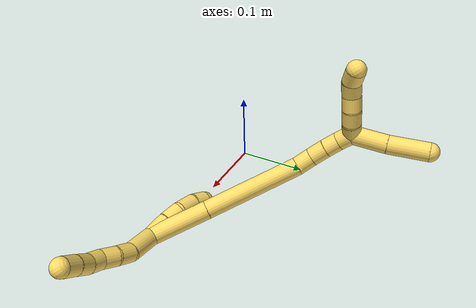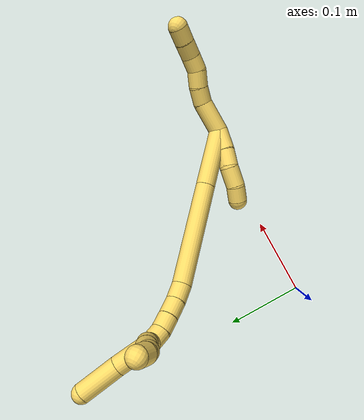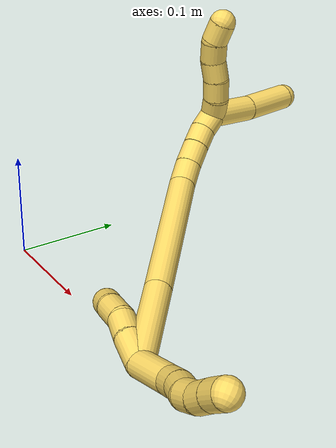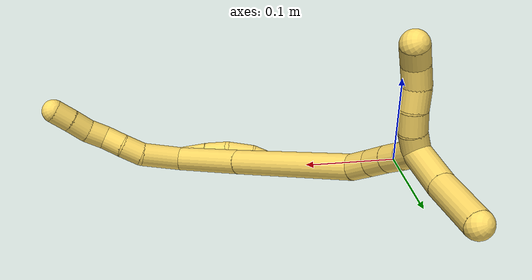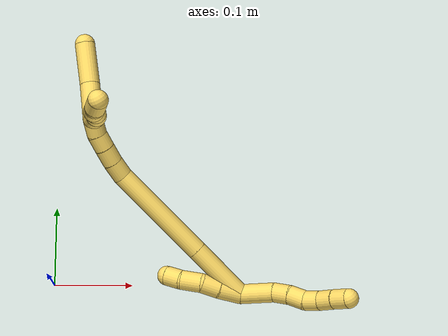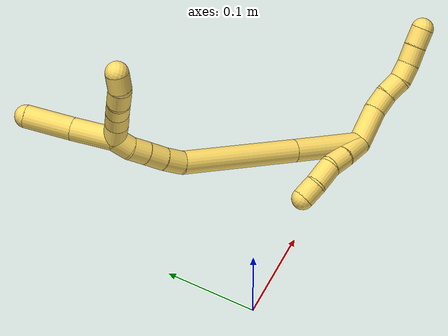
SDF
<sdf version="1.7">
 <world name="default">
  <model name="5">
   <static>0</static>
   <link name="5">
    <collision name="collision-cylinder-e_1_2_8">
     <pose>0.011828 -0.017289 -0.00588 1.89864 0.574762 0.782841</pose>
     <geometry><cylinder><radius>0.0125</radius><length>0.043515</length></cylinder></geometry>
     <surface>
      <friction><ode><mu>1.16</mu><mu2>1.16</mu2><slip1>0</slip1><slip2>0</slip2></ode></friction>
      <contact><ode><kp>1e+06</kp><kd>1</kd><max_vel>0</max_vel><min_depth>0.001</min_depth></ode></contact>
     </surface>
    </collision>
    <visual name="visual-cylinder-e_1_2_8">
     <pose>0.011828 -0.017289 -0.00588 1.89864 0.574762 0.782841</pose>
     <geometry><cylinder><radius>0.0125</radius><length>0.043515</length></cylinder></geometry>
     <material><ambient>1 0.858824 0.4 1</ambient></material>
    </visual>
    <collision name="collision-cylinder-e_2_8_9">
     <pose>0.026472 -0.044885 -0.015012 1.87635 0.254874 0.346049</pose>
     <geometry><cylinder><radius>0.0125</radius><length>0.022336</length></cylinder></geometry>
     <surface>
      <friction><ode><mu>1.16</mu><mu2>1.16</mu2><slip1>0</slip1><slip2>0</slip2></ode></friction>
      <contact><ode><kp>1e+06</kp><kd>1</kd><max_vel>0</max_vel><min_depth>0.001</min_depth></ode></contact>
     </surface>
    </collision>
    <visual name="visual-cylinder-e_2_8_9">
     <pose>0.026472 -0.044885 -0.015012 1.87635 0.254874 0.346049</pose>
     <geometry><cylinder><radius>0.0125</radius><length>0.022336</length></cylinder></geometry>
     <material><ambient>1 0.858824 0.4 1</ambient></material>
    </visual>
    <collision name="collision-cylinder-e_3_9_10">
     <pose>0.031049 -0.064879 -0.023002 2.02571 0.161848 0.258456</pose>
     <geometry><cylinder><radius>0.0125</radius><length>0.021856</length></cylinder></geometry>
     <surface>
      <friction><ode><mu>1.16</mu><mu2>1.16</mu2><slip1>0</slip1><slip2>0</slip2></ode></friction>
      <contact><ode><kp>1e+06</kp><kd>1</kd><max_vel>0</max_vel><min_depth>0.001</min_depth></ode></contact>
     </surface>
    </collision>
    <visual name="visual-cylinder-e_3_9_10">
     <pose>0.031049 -0.064879 -0.023002 2.02571 0.161848 0.258456</pose>
     <geometry><cylinder><radius>0.0125</radius><length>0.021856</length></cylinder></geometry>
     <material><ambient>1 0.858824 0.4 1</ambient></material>
    </visual>
    <collision name="collision-cylinder-e_4_10_11">
     <pose>0.036319 -0.083805 -0.029462 1.75505 0.357369 0.4281</pose>
     <geometry><cylinder><radius>0.0125</radius><length>0.020061</length></cylinder></geometry>
     <surface>
      <friction><ode><mu>1.16</mu><mu2>1.16</mu2><slip1>0</slip1><slip2>0</slip2></ode></friction>
      <contact><ode><kp>1e+06</kp><kd>1</kd><max_vel>0</max_vel><min_depth>0.001</min_depth></ode></contact>
     </surface>
    </collision>
    <visual name="visual-cylinder-e_4_10_11">
     <pose>0.036319 -0.083805 -0.029462 1.75505 0.357369 0.4281</pose>
     <geometry><cylinder><radius>0.0125</radius><length>0.020061</length></cylinder></geometry>
     <material><ambient>1 0.858824 0.4 1</ambient></material>
    </visual>
    <collision name="collision-cylinder-e_5_11_12">
     <pose>0.042295 -0.103363 -0.03102 1.55496 0.234645 0.230991</pose>
     <geometry><cylinder><radius>0.0125</radius><length>0.021223</length></cylinder></geometry>
     <surface>
      <friction><ode><mu>1.16</mu><mu2>1.16</mu2><slip1>0</slip1><slip2>0</slip2></ode></friction>
      <contact><ode><kp>1e+06</kp><kd>1</kd><max_vel>0</max_vel><min_depth>0.001</min_depth></ode></contact>
     </surface>
    </collision>
    <visual name="visual-cylinder-e_5_11_12">
     <pose>0.042295 -0.103363 -0.03102 1.55496 0.234645 0.230991</pose>
     <geometry><cylinder><radius>0.0125</radius><length>0.021223</length></cylinder></geometry>
     <material><ambient>1 0.858824 0.4 1</ambient></material>
    </visual>
    <collision name="collision-cylinder-e_6_12_6">
     <pose>0.047386 -0.123848 -0.031181 1.60272 0.252493 0.260594</pose>
     <geometry><cylinder><radius>0.0125</radius><length>0.021009</length></cylinder></geometry>
     <surface>
      <friction><ode><mu>1.16</mu><mu2>1.16</mu2><slip1>0</slip1><slip2>0</slip2></ode></friction>
      <contact><ode><kp>1e+06</kp><kd>1</kd><max_vel>0</max_vel><min_depth>0.001</min_depth></ode></contact>
     </surface>
    </collision>
    <visual name="visual-cylinder-e_6_12_6">
     <pose>0.047386 -0.123848 -0.031181 1.60272 0.252493 0.260594</pose>
     <geometry><cylinder><radius>0.0125</radius><length>0.021009</length></cylinder></geometry>
     <material><ambient>1 0.858824 0.4 1</ambient></material>
    </visual>
    <collision name="collision-cylinder-e_1_2_13">
     <pose>-0.00827 0.007241 0.00979 -0.636848 -0.596628 0.202033</pose>
     <geometry><cylinder><radius>0.0125</radius><length>0.029439</length></cylinder></geometry>
     <surface>
      <friction><ode><mu>1.16</mu><mu2>1.16</mu2><slip1>0</slip1><slip2>0</slip2></ode></friction>
      <contact><ode><kp>1e+06</kp><kd>1</kd><max_vel>0</max_vel><min_depth>0.001</min_depth></ode></contact>
     </surface>
    </collision>
    <visual name="visual-cylinder-e_1_2_13">
     <pose>-0.00827 0.007241 0.00979 -0.636848 -0.596628 0.202033</pose>
     <geometry><cylinder><radius>0.0125</radius><length>0.029439</length></cylinder></geometry>
     <material><ambient>1 0.858824 0.4 1</ambient></material>
    </visual>
    <collision name="collision-cylinder-e_2_13_14">
     <pose>-0.021904 0.020702 0.027573 -0.661309 -0.487013 0.170143</pose>
     <geometry><cylinder><radius>0.0125</radius><length>0.022923</length></cylinder></geometry>
     <surface>
      <friction><ode><mu>1.16</mu><mu2>1.16</mu2><slip1>0</slip1><slip2>0</slip2></ode></friction>
      <contact><ode><kp>1e+06</kp><kd>1</kd><max_vel>0</max_vel><min_depth>0.001</min_depth></ode></contact>
     </surface>
    </collision>
    <visual name="visual-cylinder-e_2_13_14">
     <pose>-0.021904 0.020702 0.027573 -0.661309 -0.487013 0.170143</pose>
     <geometry><cylinder><radius>0.0125</radius><length>0.022923</length></cylinder></geometry>
     <material><ambient>1 0.858824 0.4 1</ambient></material>
    </visual>
    <collision name="collision-cylinder-e_3_14_15">
     <pose>-0.033198 0.037255 0.04167 -1.03722 -0.458944 0.26506</pose>
     <geometry><cylinder><radius>0.0125</radius><length>0.02677</length></cylinder></geometry>
     <surface>
      <friction><ode><mu>1.16</mu><mu2>1.16</mu2><slip1>0</slip1><slip2>0</slip2></ode></friction>
      <contact><ode><kp>1e+06</kp><kd>1</kd><max_vel>0</max_vel><min_depth>0.001</min_depth></ode></contact>
     </surface>
    </collision>
    <visual name="visual-cylinder-e_3_14_15">
     <pose>-0.033198 0.037255 0.04167 -1.03722 -0.458944 0.26506</pose>
     <geometry><cylinder><radius>0.0125</radius><length>0.02677</length></cylinder></geometry>
     <material><ambient>1 0.858824 0.4 1</ambient></material>
    </visual>
    <collision name="collision-cylinder-e_4_15_5">
     <pose>-0.041487 0.056788 0.052091 -1.13206 -0.228138 0.145331</pose>
     <geometry><cylinder><radius>0.0125</radius><length>0.020868</length></cylinder></geometry>
     <surface>
      <friction><ode><mu>1.16</mu><mu2>1.16</mu2><slip1>0</slip1><slip2>0</slip2></ode></friction>
      <contact><ode><kp>1e+06</kp><kd>1</kd><max_vel>0</max_vel><min_depth>0.001</min_depth></ode></contact>
     </surface>
    </collision>
    <visual name="visual-cylinder-e_4_15_5">
     <pose>-0.041487 0.056788 0.052091 -1.13206 -0.228138 0.145331</pose>
     <geometry><cylinder><radius>0.0125</radius><length>0.020868</length></cylinder></geometry>
     <material><ambient>1 0.858824 0.4 1</ambient></material>
    </visual>
    <collision name="collision-cylinder-e_1_2_16">
     <pose>-0.004744 0.014675 0.037193 -0.37582 -0.11809 0.02248</pose>
     <geometry><cylinder><radius>0.0125</radius><length>0.080528</length></cylinder></geometry>
     <surface>
      <friction><ode><mu>1.16</mu><mu2>1.16</mu2><slip1>0</slip1><slip2>0</slip2></ode></friction>
      <contact><ode><kp>1e+06</kp><kd>1</kd><max_vel>0</max_vel><min_depth>0.001</min_depth></ode></contact>
     </surface>
    </collision>
    <visual name="visual-cylinder-e_1_2_16">
     <pose>-0.004744 0.014675 0.037193 -0.37582 -0.11809 0.02248</pose>
     <geometry><cylinder><radius>0.0125</radius><length>0.080528</length></cylinder></geometry>
     <material><ambient>1 0.858824 0.4 1</ambient></material>
    </visual>
    <collision name="collision-cylinder-e_2_16_17">
     <pose>-0.017806 0.053258 0.136537 -0.367211 -0.124278 0.023107</pose>
     <geometry><cylinder><radius>0.0125</radius><length>0.134217</length></cylinder></geometry>
     <surface>
      <friction><ode><mu>1.16</mu><mu2>1.16</mu2><slip1>0</slip1><slip2>0</slip2></ode></friction>
      <contact><ode><kp>1e+06</kp><kd>1</kd><max_vel>0</max_vel><min_depth>0.001</min_depth></ode></contact>
     </surface>
    </collision>
    <visual name="visual-cylinder-e_2_16_17">
     <pose>-0.017806 0.053258 0.136537 -0.367211 -0.124278 0.023107</pose>
     <geometry><cylinder><radius>0.0125</radius><length>0.134217</length></cylinder></geometry>
     <material><ambient>1 0.858824 0.4 1</ambient></material>
    </visual>
    <collision name="collision-cylinder-e_3_17_18">
     <pose>-0.027472 0.077777 0.210175 -0.053228 -0.116582 0.003107</pose>
     <geometry><cylinder><radius>0.0125</radius><length>0.023162</length></cylinder></geometry>
     <surface>
      <friction><ode><mu>1.16</mu><mu2>1.16</mu2><slip1>0</slip1><slip2>0</slip2></ode></friction>
      <contact><ode><kp>1e+06</kp><kd>1</kd><max_vel>0</max_vel><min_depth>0.001</min_depth></ode></contact>
     </surface>
    </collision>
    <visual name="visual-cylinder-e_3_17_18">
     <pose>-0.027472 0.077777 0.210175 -0.053228 -0.116582 0.003107</pose>
     <geometry><cylinder><radius>0.0125</radius><length>0.023162</length></cylinder></geometry>
     <material><ambient>1 0.858824 0.4 1</ambient></material>
    </visual>
    <collision name="collision-cylinder-e_4_18_19">
     <pose>-0.029362 0.078268 0.232653 0.011031 -0.049362 -0.000272</pose>
     <geometry><cylinder><radius>0.0125</radius><length>0.022013</length></cylinder></geometry>
     <surface>
      <friction><ode><mu>1.16</mu><mu2>1.16</mu2><slip1>0</slip1><slip2>0</slip2></ode></friction>
      <contact><ode><kp>1e+06</kp><kd>1</kd><max_vel>0</max_vel><min_depth>0.001</min_depth></ode></contact>
     </surface>
    </collision>
    <visual name="visual-cylinder-e_4_18_19">
     <pose>-0.029362 0.078268 0.232653 0.011031 -0.049362 -0.000272</pose>
     <geometry><cylinder><radius>0.0125</radius><length>0.022013</length></cylinder></geometry>
     <material><ambient>1 0.858824 0.4 1</ambient></material>
    </visual>
    <collision name="collision-cylinder-e_5_19_20">
     <pose>-0.030099 0.078291 0.253668 -0.01445 -0.019342 0.00014</pose>
     <geometry><cylinder><radius>0.0125</radius><length>0.02005</length></cylinder></geometry>
     <surface>
      <friction><ode><mu>1.16</mu><mu2>1.16</mu2><slip1>0</slip1><slip2>0</slip2></ode></friction>
      <contact><ode><kp>1e+06</kp><kd>1</kd><max_vel>0</max_vel><min_depth>0.001</min_depth></ode></contact>
     </surface>
    </collision>
    <visual name="visual-cylinder-e_5_19_20">
     <pose>-0.030099 0.078291 0.253668 -0.01445 -0.019342 0.00014</pose>
     <geometry><cylinder><radius>0.0125</radius><length>0.02005</length></cylinder></geometry>
     <material><ambient>1 0.858824 0.4 1</ambient></material>
    </visual>
    <collision name="collision-cylinder-e_6_20_1">
     <pose>-0.028961 0.076789 0.273478 0.166676 0.1334 0.011159</pose>
     <geometry><cylinder><radius>0.0125</radius><length>0.02003</length></cylinder></geometry>
     <surface>
      <friction><ode><mu>1.16</mu><mu2>1.16</mu2><slip1>0</slip1><slip2>0</slip2></ode></friction>
      <contact><ode><kp>1e+06</kp><kd>1</kd><max_vel>0</max_vel><min_depth>0.001</min_depth></ode></contact>
     </surface>
    </collision>
    <visual name="visual-cylinder-e_6_20_1">
     <pose>-0.028961 0.076789 0.273478 0.166676 0.1334 0.011159</pose>
     <geometry><cylinder><radius>0.0125</radius><length>0.02003</length></cylinder></geometry>
     <material><ambient>1 0.858824 0.4 1</ambient></material>
    </visual>
    <collision name="collision-cylinder-e_1_1_21">
     <pose>-0.030116 0.06624 0.287082 1.16593 -0.251396 -0.166269</pose>
     <geometry><cylinder><radius>0.0125</radius><length>0.02</length></cylinder></geometry>
     <surface>
      <friction><ode><mu>1.16</mu><mu2>1.16</mu2><slip1>0</slip1><slip2>0</slip2></ode></friction>
      <contact><ode><kp>1e+06</kp><kd>1</kd><max_vel>0</max_vel><min_depth>0.001</min_depth></ode></contact>
     </surface>
    </collision>
    <visual name="visual-cylinder-e_1_1_21">
     <pose>-0.030116 0.06624 0.287082 1.16593 -0.251396 -0.166269</pose>
     <geometry><cylinder><radius>0.0125</radius><length>0.02</length></cylinder></geometry>
     <material><ambient>1 0.858824 0.4 1</ambient></material>
    </visual>
    <collision name="collision-cylinder-e_2_21_22">
     <pose>-0.036633 0.049519 0.295656 1.02399 -0.414672 -0.235344</pose>
     <geometry><cylinder><radius>0.0125</radius><length>0.02</length></cylinder></geometry>
     <surface>
      <friction><ode><mu>1.16</mu><mu2>1.16</mu2><slip1>0</slip1><slip2>0</slip2></ode></friction>
      <contact><ode><kp>1e+06</kp><kd>1</kd><max_vel>0</max_vel><min_depth>0.001</min_depth></ode></contact>
     </surface>
    </collision>
    <visual name="visual-cylinder-e_2_21_22">
     <pose>-0.036633 0.049519 0.295656 1.02399 -0.414672 -0.235344</pose>
     <geometry><cylinder><radius>0.0125</radius><length>0.02</length></cylinder></geometry>
     <material><ambient>1 0.858824 0.4 1</ambient></material>
    </visual>
    <collision name="collision-cylinder-e_3_22_23">
     <pose>-0.046173 0.034721 0.304986 0.991027 -0.583716 -0.321958</pose>
     <geometry><cylinder><radius>0.0125</radius><length>0.02</length></cylinder></geometry>
     <surface>
      <friction><ode><mu>1.16</mu><mu2>1.16</mu2><slip1>0</slip1><slip2>0</slip2></ode></friction>
      <contact><ode><kp>1e+06</kp><kd>1</kd><max_vel>0</max_vel><min_depth>0.001</min_depth></ode></contact>
     </surface>
    </collision>
    <visual name="visual-cylinder-e_3_22_23">
     <pose>-0.046173 0.034721 0.304986 0.991027 -0.583716 -0.321958</pose>
     <geometry><cylinder><radius>0.0125</radius><length>0.02</length></cylinder></geometry>
     <material><ambient>1 0.858824 0.4 1</ambient></material>
    </visual>
    <collision name="collision-cylinder-e_4_23_24">
     <pose>-0.055088 0.019412 0.313923 1.08803 -0.347327 -0.211446</pose>
     <geometry><cylinder><radius>0.0125</radius><length>0.02</length></cylinder></geometry>
     <surface>
      <friction><ode><mu>1.16</mu><mu2>1.16</mu2><slip1>0</slip1><slip2>0</slip2></ode></friction>
      <contact><ode><kp>1e+06</kp><kd>1</kd><max_vel>0</max_vel><min_depth>0.001</min_depth></ode></contact>
     </surface>
    </collision>
    <visual name="visual-cylinder-e_4_23_24">
     <pose>-0.055088 0.019412 0.313923 1.08803 -0.347327 -0.211446</pose>
     <geometry><cylinder><radius>0.0125</radius><length>0.02</length></cylinder></geometry>
     <material><ambient>1 0.858824 0.4 1</ambient></material>
    </visual>
    <collision name="collision-cylinder-e_5_24_4">
     <pose>-0.058925 0.003083 0.324272 0.928563 -0.04333 -0.021702</pose>
     <geometry><cylinder><radius>0.0125</radius><length>0.02</length></cylinder></geometry>
     <surface>
      <friction><ode><mu>1.16</mu><mu2>1.16</mu2><slip1>0</slip1><slip2>0</slip2></ode></friction>
      <contact><ode><kp>1e+06</kp><kd>1</kd><max_vel>0</max_vel><min_depth>0.001</min_depth></ode></contact>
     </surface>
    </collision>
    <visual name="visual-cylinder-e_5_24_4">
     <pose>-0.058925 0.003083 0.324272 0.928563 -0.04333 -0.021702</pose>
     <geometry><cylinder><radius>0.0125</radius><length>0.02</length></cylinder></geometry>
     <material><ambient>1 0.858824 0.4 1</ambient></material>
    </visual>
    <collision name="collision-cylinder-e_1_1_25">
     <pose>-0.012929 0.082474 0.300059 -0.411659 0.676128 -0.146539</pose>
     <geometry><cylinder><radius>0.0125</radius><length>0.046981</length></cylinder></geometry>
     <surface>
      <friction><ode><mu>1.16</mu><mu2>1.16</mu2><slip1>0</slip1><slip2>0</slip2></ode></friction>
      <contact><ode><kp>1e+06</kp><kd>1</kd><max_vel>0</max_vel><min_depth>0.001</min_depth></ode></contact>
     </surface>
    </collision>
    <visual name="visual-cylinder-e_1_1_25">
     <pose>-0.012929 0.082474 0.300059 -0.411659 0.676128 -0.146539</pose>
     <geometry><cylinder><radius>0.0125</radius><length>0.046981</length></cylinder></geometry>
     <material><ambient>1 0.858824 0.4 1</ambient></material>
    </visual>
    <collision name="collision-cylinder-e_2_25_3">
     <pose>0.01695 0.096949 0.337378 -0.334899 0.609639 -0.106263</pose>
     <geometry><cylinder><radius>0.0125</radius><length>0.053019</length></cylinder></geometry>
     <surface>
      <friction><ode><mu>1.16</mu><mu2>1.16</mu2><slip1>0</slip1><slip2>0</slip2></ode></friction>
      <contact><ode><kp>1e+06</kp><kd>1</kd><max_vel>0</max_vel><min_depth>0.001</min_depth></ode></contact>
     </surface>
    </collision>
    <visual name="visual-cylinder-e_2_25_3">
     <pose>0.01695 0.096949 0.337378 -0.334899 0.609639 -0.106263</pose>
     <geometry><cylinder><radius>0.0125</radius><length>0.053019</length></cylinder></geometry>
     <material><ambient>1 0.858824 0.4 1</ambient></material>
    </visual>
    <collision name="collision-sphere-3">
     <pose>0.032128 0.104092 0.357904 0 -0 0</pose>
     <geometry><sphere><radius>0.0125</radius></sphere></geometry>
     <surface>
      <friction><ode><mu>1.16</mu><mu2>1.16</mu2><slip1>0</slip1><slip2>0</slip2></ode></friction>
      <contact><ode><kp>1e+06</kp><kd>1</kd><max_vel>0</max_vel><min_depth>0.001</min_depth></ode></contact>
     </surface>
    </collision>
    <visual name="visual-sphere-3">
     <pose>0.032128 0.104092 0.357904 0 -0 0</pose>
     <geometry><sphere><radius>0.0125</radius></sphere></geometry>
     <material><ambient>1 0.858824 0.4 1</ambient></material>
    </visual>
    <collision name="collision-sphere-25">
     <pose>0.001771 0.089805 0.316851 0 -0 0</pose>
     <geometry><sphere><radius>0.0125</radius></sphere></geometry>
     <surface>
      <friction><ode><mu>1.16</mu><mu2>1.16</mu2><slip1>0</slip1><slip2>0</slip2></ode></friction>
      <contact><ode><kp>1e+06</kp><kd>1</kd><max_vel>0</max_vel><min_depth>0.001</min_depth></ode></contact>
     </surface>
    </collision>
    <visual name="visual-sphere-25">
     <pose>0.001771 0.089805 0.316851 0 -0 0</pose>
     <geometry><sphere><radius>0.0125</radius></sphere></geometry>
     <material><ambient>1 0.858824 0.4 1</ambient></material>
    </visual>
    <collision name="collision-sphere-4">
     <pose>-0.059358 -0.004917 0.330256 0 -0 0</pose>
     <geometry><sphere><radius>0.0125</radius></sphere></geometry>
     <surface>
      <friction><ode><mu>1.16</mu><mu2>1.16</mu2><slip1>0</slip1><slip2>0</slip2></ode></friction>
      <contact><ode><kp>1e+06</kp><kd>1</kd><max_vel>0</max_vel><min_depth>0.001</min_depth></ode></contact>
     </surface>
    </collision>
    <visual name="visual-sphere-4">
     <pose>-0.059358 -0.004917 0.330256 0 -0 0</pose>
     <geometry><sphere><radius>0.0125</radius></sphere></geometry>
     <material><ambient>1 0.858824 0.4 1</ambient></material>
    </visual>
    <collision name="collision-sphere-24">
     <pose>-0.058492 0.011083 0.318288 0 -0 0</pose>
     <geometry><sphere><radius>0.0125</radius></sphere></geometry>
     <surface>
      <friction><ode><mu>1.16</mu><mu2>1.16</mu2><slip1>0</slip1><slip2>0</slip2></ode></friction>
      <contact><ode><kp>1e+06</kp><kd>1</kd><max_vel>0</max_vel><min_depth>0.001</min_depth></ode></contact>
     </surface>
    </collision>
    <visual name="visual-sphere-24">
     <pose>-0.058492 0.011083 0.318288 0 -0 0</pose>
     <geometry><sphere><radius>0.0125</radius></sphere></geometry>
     <material><ambient>1 0.858824 0.4 1</ambient></material>
    </visual>
    <collision name="collision-sphere-23">
     <pose>-0.051684 0.02774 0.309558 0 -0 0</pose>
     <geometry><sphere><radius>0.0125</radius></sphere></geometry>
     <surface>
      <friction><ode><mu>1.16</mu><mu2>1.16</mu2><slip1>0</slip1><slip2>0</slip2></ode></friction>
      <contact><ode><kp>1e+06</kp><kd>1</kd><max_vel>0</max_vel><min_depth>0.001</min_depth></ode></contact>
     </surface>
    </collision>
    <visual name="visual-sphere-23">
     <pose>-0.051684 0.02774 0.309558 0 -0 0</pose>
     <geometry><sphere><radius>0.0125</radius></sphere></geometry>
     <material><ambient>1 0.858824 0.4 1</ambient></material>
    </visual>
    <collision name="collision-sphere-22">
     <pose>-0.040662 0.041701 0.300415 0 -0 0</pose>
     <geometry><sphere><radius>0.0125</radius></sphere></geometry>
     <surface>
      <friction><ode><mu>1.16</mu><mu2>1.16</mu2><slip1>0</slip1><slip2>0</slip2></ode></friction>
      <contact><ode><kp>1e+06</kp><kd>1</kd><max_vel>0</max_vel><min_depth>0.001</min_depth></ode></contact>
     </surface>
    </collision>
    <visual name="visual-sphere-22">
     <pose>-0.040662 0.041701 0.300415 0 -0 0</pose>
     <geometry><sphere><radius>0.0125</radius></sphere></geometry>
     <material><ambient>1 0.858824 0.4 1</ambient></material>
    </visual>
    <collision name="collision-sphere-21">
     <pose>-0.032604 0.057337 0.290897 0 -0 0</pose>
     <geometry><sphere><radius>0.0125</radius></sphere></geometry>
     <surface>
      <friction><ode><mu>1.16</mu><mu2>1.16</mu2><slip1>0</slip1><slip2>0</slip2></ode></friction>
      <contact><ode><kp>1e+06</kp><kd>1</kd><max_vel>0</max_vel><min_depth>0.001</min_depth></ode></contact>
     </surface>
    </collision>
    <visual name="visual-sphere-21">
     <pose>-0.032604 0.057337 0.290897 0 -0 0</pose>
     <geometry><sphere><radius>0.0125</radius></sphere></geometry>
     <material><ambient>1 0.858824 0.4 1</ambient></material>
    </visual>
    <collision name="collision-sphere-1">
     <pose>-0.027629 0.075142 0.283267 0 -0 0</pose>
     <geometry><sphere><radius>0.0125</radius></sphere></geometry>
     <surface>
      <friction><ode><mu>1.16</mu><mu2>1.16</mu2><slip1>0</slip1><slip2>0</slip2></ode></friction>
      <contact><ode><kp>1e+06</kp><kd>1</kd><max_vel>0</max_vel><min_depth>0.001</min_depth></ode></contact>
     </surface>
    </collision>
    <visual name="visual-sphere-1">
     <pose>-0.027629 0.075142 0.283267 0 -0 0</pose>
     <geometry><sphere><radius>0.0125</radius></sphere></geometry>
     <material><ambient>1 0.858824 0.4 1</ambient></material>
    </visual>
    <collision name="collision-sphere-12">
     <pose>0.044762 -0.113682 -0.030857 0 -0 0</pose>
     <geometry><sphere><radius>0.0125</radius></sphere></geometry>
     <surface>
      <friction><ode><mu>1.16</mu><mu2>1.16</mu2><slip1>0</slip1><slip2>0</slip2></ode></friction>
      <contact><ode><kp>1e+06</kp><kd>1</kd><max_vel>0</max_vel><min_depth>0.001</min_depth></ode></contact>
     </surface>
    </collision>
    <visual name="visual-sphere-12">
     <pose>0.044762 -0.113682 -0.030857 0 -0 0</pose>
     <geometry><sphere><radius>0.0125</radius></sphere></geometry>
     <material><ambient>1 0.858824 0.4 1</ambient></material>
    </visual>
    <collision name="collision-sphere-11">
     <pose>0.039827 -0.093043 -0.031184 0 -0 0</pose>
     <geometry><sphere><radius>0.0125</radius></sphere></geometry>
     <surface>
      <friction><ode><mu>1.16</mu><mu2>1.16</mu2><slip1>0</slip1><slip2>0</slip2></ode></friction>
      <contact><ode><kp>1e+06</kp><kd>1</kd><max_vel>0</max_vel><min_depth>0.001</min_depth></ode></contact>
     </surface>
    </collision>
    <visual name="visual-sphere-11">
     <pose>0.039827 -0.093043 -0.031184 0 -0 0</pose>
     <geometry><sphere><radius>0.0125</radius></sphere></geometry>
     <material><ambient>1 0.858824 0.4 1</ambient></material>
    </visual>
    <collision name="collision-sphere-10">
     <pose>0.03281 -0.074568 -0.02774 0 -0 0</pose>
     <geometry><sphere><radius>0.0125</radius></sphere></geometry>
     <surface>
      <friction><ode><mu>1.16</mu><mu2>1.16</mu2><slip1>0</slip1><slip2>0</slip2></ode></friction>
      <contact><ode><kp>1e+06</kp><kd>1</kd><max_vel>0</max_vel><min_depth>0.001</min_depth></ode></contact>
     </surface>
    </collision>
    <visual name="visual-sphere-10">
     <pose>0.03281 -0.074568 -0.02774 0 -0 0</pose>
     <geometry><sphere><radius>0.0125</radius></sphere></geometry>
     <material><ambient>1 0.858824 0.4 1</ambient></material>
    </visual>
    <collision name="collision-sphere-9">
     <pose>0.029288 -0.055191 -0.018263 0 -0 0</pose>
     <geometry><sphere><radius>0.0125</radius></sphere></geometry>
     <surface>
      <friction><ode><mu>1.16</mu><mu2>1.16</mu2><slip1>0</slip1><slip2>0</slip2></ode></friction>
      <contact><ode><kp>1e+06</kp><kd>1</kd><max_vel>0</max_vel><min_depth>0.001</min_depth></ode></contact>
     </surface>
    </collision>
    <visual name="visual-sphere-9">
     <pose>0.029288 -0.055191 -0.018263 0 -0 0</pose>
     <geometry><sphere><radius>0.0125</radius></sphere></geometry>
     <material><ambient>1 0.858824 0.4 1</ambient></material>
    </visual>
    <collision name="collision-sphere-2">
     <geometry><sphere><radius>0.0125</radius></sphere></geometry>
     <surface>
      <friction><ode><mu>1.16</mu><mu2>1.16</mu2><slip1>0</slip1><slip2>0</slip2></ode></friction>
      <contact><ode><kp>1e+06</kp><kd>1</kd><max_vel>0</max_vel><min_depth>0.001</min_depth></ode></contact>
     </surface>
    </collision>
    <visual name="visual-sphere-2">
     <geometry><sphere><radius>0.0125</radius></sphere></geometry>
     <material><ambient>1 0.858824 0.4 1</ambient></material>
    </visual>
    <collision name="collision-sphere-19">
     <pose>-0.029905 0.078146 0.243646 0 -0 0</pose>
     <geometry><sphere><radius>0.0125</radius></sphere></geometry>
     <surface>
      <friction><ode><mu>1.16</mu><mu2>1.16</mu2><slip1>0</slip1><slip2>0</slip2></ode></friction>
      <contact><ode><kp>1e+06</kp><kd>1</kd><max_vel>0</max_vel><min_depth>0.001</min_depth></ode></contact>
     </surface>
    </collision>
    <visual name="visual-sphere-19">
     <pose>-0.029905 0.078146 0.243646 0 -0 0</pose>
     <geometry><sphere><radius>0.0125</radius></sphere></geometry>
     <material><ambient>1 0.858824 0.4 1</ambient></material>
    </visual>
    <collision name="collision-sphere-8">
     <pose>0.023656 -0.034578 -0.011761 0 -0 0</pose>
     <geometry><sphere><radius>0.0125</radius></sphere></geometry>
     <surface>
      <friction><ode><mu>1.16</mu><mu2>1.16</mu2><slip1>0</slip1><slip2>0</slip2></ode></friction>
      <contact><ode><kp>1e+06</kp><kd>1</kd><max_vel>0</max_vel><min_depth>0.001</min_depth></ode></contact>
     </surface>
    </collision>
    <visual name="visual-sphere-8">
     <pose>0.023656 -0.034578 -0.011761 0 -0 0</pose>
     <geometry><sphere><radius>0.0125</radius></sphere></geometry>
     <material><ambient>1 0.858824 0.4 1</ambient></material>
    </visual>
    <collision name="collision-sphere-6">
     <pose>0.05001 -0.134014 -0.031506 0 -0 0</pose>
     <geometry><sphere><radius>0.0125</radius></sphere></geometry>
     <surface>
      <friction><ode><mu>1.16</mu><mu2>1.16</mu2><slip1>0</slip1><slip2>0</slip2></ode></friction>
      <contact><ode><kp>1e+06</kp><kd>1</kd><max_vel>0</max_vel><min_depth>0.001</min_depth></ode></contact>
     </surface>
    </collision>
    <visual name="visual-sphere-6">
     <pose>0.05001 -0.134014 -0.031506 0 -0 0</pose>
     <geometry><sphere><radius>0.0125</radius></sphere></geometry>
     <material><ambient>1 0.858824 0.4 1</ambient></material>
    </visual>
    <collision name="collision-sphere-13">
     <pose>-0.01654 0.014482 0.019579 0 -0 0</pose>
     <geometry><sphere><radius>0.0125</radius></sphere></geometry>
     <surface>
      <friction><ode><mu>1.16</mu><mu2>1.16</mu2><slip1>0</slip1><slip2>0</slip2></ode></friction>
      <contact><ode><kp>1e+06</kp><kd>1</kd><max_vel>0</max_vel><min_depth>0.001</min_depth></ode></contact>
     </surface>
    </collision>
    <visual name="visual-sphere-13">
     <pose>-0.01654 0.014482 0.019579 0 -0 0</pose>
     <geometry><sphere><radius>0.0125</radius></sphere></geometry>
     <material><ambient>1 0.858824 0.4 1</ambient></material>
    </visual>
    <collision name="collision-sphere-14">
     <pose>-0.027268 0.026923 0.035566 0 -0 0</pose>
     <geometry><sphere><radius>0.0125</radius></sphere></geometry>
     <surface>
      <friction><ode><mu>1.16</mu><mu2>1.16</mu2><slip1>0</slip1><slip2>0</slip2></ode></friction>
      <contact><ode><kp>1e+06</kp><kd>1</kd><max_vel>0</max_vel><min_depth>0.001</min_depth></ode></contact>
     </surface>
    </collision>
    <visual name="visual-sphere-14">
     <pose>-0.027268 0.026923 0.035566 0 -0 0</pose>
     <geometry><sphere><radius>0.0125</radius></sphere></geometry>
     <material><ambient>1 0.858824 0.4 1</ambient></material>
    </visual>
    <collision name="collision-sphere-15">
     <pose>-0.039127 0.047587 0.047773 0 -0 0</pose>
     <geometry><sphere><radius>0.0125</radius></sphere></geometry>
     <surface>
      <friction><ode><mu>1.16</mu><mu2>1.16</mu2><slip1>0</slip1><slip2>0</slip2></ode></friction>
      <contact><ode><kp>1e+06</kp><kd>1</kd><max_vel>0</max_vel><min_depth>0.001</min_depth></ode></contact>
     </surface>
    </collision>
    <visual name="visual-sphere-15">
     <pose>-0.039127 0.047587 0.047773 0 -0 0</pose>
     <geometry><sphere><radius>0.0125</radius></sphere></geometry>
     <material><ambient>1 0.858824 0.4 1</ambient></material>
    </visual>
    <collision name="collision-sphere-5">
     <pose>-0.043847 0.065989 0.056408 0 -0 0</pose>
     <geometry><sphere><radius>0.0125</radius></sphere></geometry>
     <surface>
      <friction><ode><mu>1.16</mu><mu2>1.16</mu2><slip1>0</slip1><slip2>0</slip2></ode></friction>
      <contact><ode><kp>1e+06</kp><kd>1</kd><max_vel>0</max_vel><min_depth>0.001</min_depth></ode></contact>
     </surface>
    </collision>
    <visual name="visual-sphere-5">
     <pose>-0.043847 0.065989 0.056408 0 -0 0</pose>
     <geometry><sphere><radius>0.0125</radius></sphere></geometry>
     <material><ambient>1 0.858824 0.4 1</ambient></material>
    </visual>
    <collision name="collision-sphere-16">
     <pose>-0.009487 0.029351 0.074386 0 -0 0</pose>
     <geometry><sphere><radius>0.0125</radius></sphere></geometry>
     <surface>
      <friction><ode><mu>1.16</mu><mu2>1.16</mu2><slip1>0</slip1><slip2>0</slip2></ode></friction>
      <contact><ode><kp>1e+06</kp><kd>1</kd><max_vel>0</max_vel><min_depth>0.001</min_depth></ode></contact>
     </surface>
    </collision>
    <visual name="visual-sphere-16">
     <pose>-0.009487 0.029351 0.074386 0 -0 0</pose>
     <geometry><sphere><radius>0.0125</radius></sphere></geometry>
     <material><ambient>1 0.858824 0.4 1</ambient></material>
    </visual>
    <collision name="collision-sphere-17">
     <pose>-0.026125 0.077165 0.198689 0 -0 0</pose>
     <geometry><sphere><radius>0.0125</radius></sphere></geometry>
     <surface>
      <friction><ode><mu>1.16</mu><mu2>1.16</mu2><slip1>0</slip1><slip2>0</slip2></ode></friction>
      <contact><ode><kp>1e+06</kp><kd>1</kd><max_vel>0</max_vel><min_depth>0.001</min_depth></ode></contact>
     </surface>
    </collision>
    <visual name="visual-sphere-17">
     <pose>-0.026125 0.077165 0.198689 0 -0 0</pose>
     <geometry><sphere><radius>0.0125</radius></sphere></geometry>
     <material><ambient>1 0.858824 0.4 1</ambient></material>
    </visual>
    <collision name="collision-sphere-18">
     <pose>-0.028819 0.078389 0.221661 0 -0 0</pose>
     <geometry><sphere><radius>0.0125</radius></sphere></geometry>
     <surface>
      <friction><ode><mu>1.16</mu><mu2>1.16</mu2><slip1>0</slip1><slip2>0</slip2></ode></friction>
      <contact><ode><kp>1e+06</kp><kd>1</kd><max_vel>0</max_vel><min_depth>0.001</min_depth></ode></contact>
     </surface>
    </collision>
    <visual name="visual-sphere-18">
     <pose>-0.028819 0.078389 0.221661 0 -0 0</pose>
     <geometry><sphere><radius>0.0125</radius></sphere></geometry>
     <material><ambient>1 0.858824 0.4 1</ambient></material>
    </visual>
    <collision name="collision-sphere-20">
     <pose>-0.030293 0.078436 0.26369 0 -0 0</pose>
     <geometry><sphere><radius>0.0125</radius></sphere></geometry>
     <surface>
      <friction><ode><mu>1.16</mu><mu2>1.16</mu2><slip1>0</slip1><slip2>0</slip2></ode></friction>
      <contact><ode><kp>1e+06</kp><kd>1</kd><max_vel>0</max_vel><min_depth>0.001</min_depth></ode></contact>
     </surface>
    </collision>
    <visual name="visual-sphere-20">
     <pose>-0.030293 0.078436 0.26369 0 -0 0</pose>
     <geometry><sphere><radius>0.0125</radius></sphere></geometry>
     <material><ambient>1 0.858824 0.4 1</ambient></material>
    </visual>
    <inertial>
     <pose>-0.010106 0.027542 0.139335 0 -0 0</pose>
     <mass>0.75</mass>
     <inertia>
      <ixx>0.000317</ixx>
      <ixy>0</ixy>
      <ixz>0</ixz>
      <iyy>0.000286</iyy>
      <iyz>0</iyz>
      <izz>-3.4e-05</izz>
     </inertia>
    </inertial>
   </link>
   <pose>0.239179 -0.010758 0.012605 -0.935178 0.416749 0.816068</pose>
  </model>
 </world>
</sdf>
